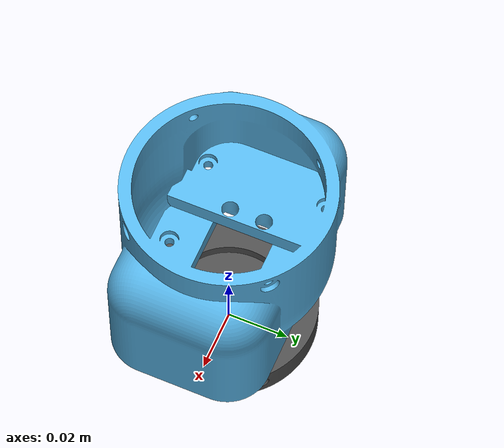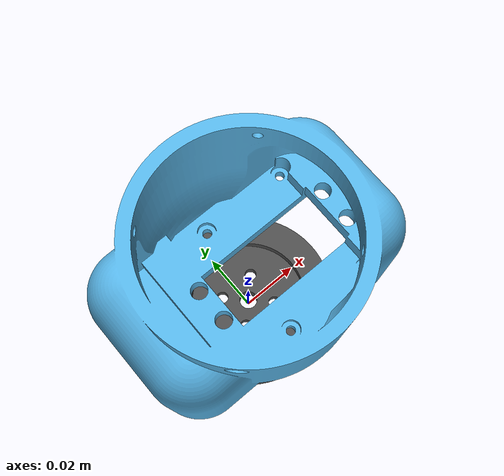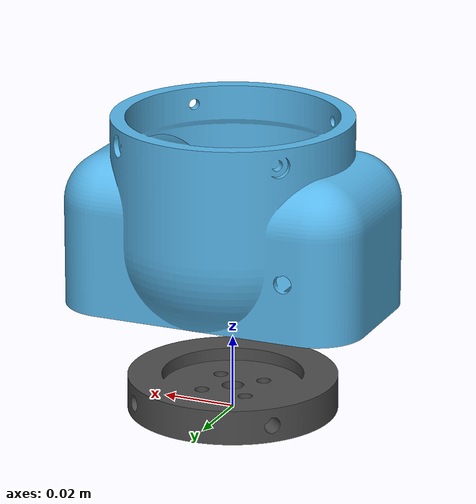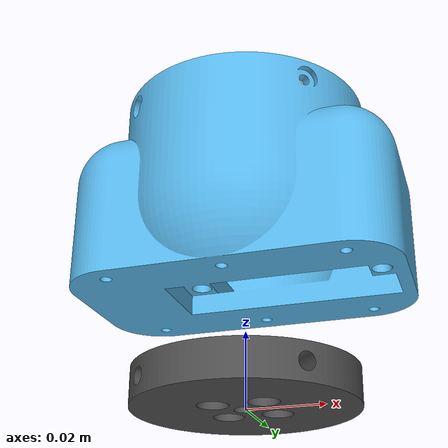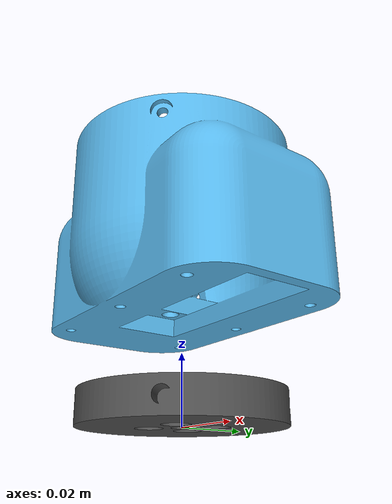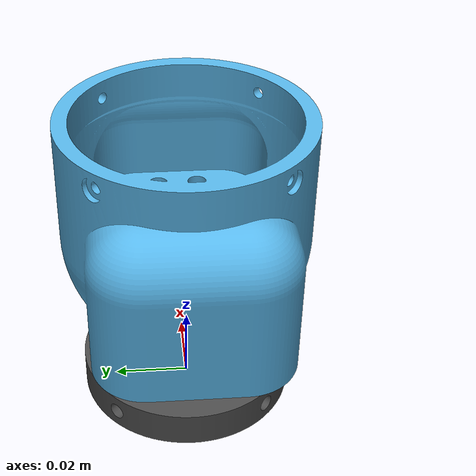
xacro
<?xml version="1.0"?>
<robot xmlns:xacro="http://www.ros.org/wiki/xacro">

  <!-- WORLD LINK & BASE FIXTURE                         -->
  <link name="world"/>

  <joint name="world_joint" type="fixed">
    <parent link="world"/>
    <child link="base_link"/>
    <origin xyz="0 0 0" rpy="0 0 0"/>
  </joint>

  <!-- BASE LINK (001 Base Plate + 002 Washer)           -->
  <link name="base_link">
    <!-- 001 Base Plate -->
    <visual>
      <origin xyz="-0.100 -0.100 0.0" rpy="0 0 0"/>
      <geometry>
        <mesh filename="package://eb15_description/meshes/001.stl" scale="0.001 0.001 0.001"/>
      </geometry>
      <material name="dark_gray"/>
    </visual>

    <!-- 002 Washer (Thickness: 0.8mm) -->
    <visual>
      <origin xyz="-0.100 -0.100 0.030" rpy="0 0 0"/>
      <geometry>
        <mesh filename="package://eb15_description/meshes/002.stl" scale="0.001 0.001 0.001"/>
      </geometry>
      <material name="metallic"/>
    </visual>

    <collision>
      <origin xyz="0 0 0.015" rpy="0 0 0"/>
      <geometry>
        <cylinder radius="0.0525" length="0.030"/>
      </geometry>
    </collision>

    <inertial>
      <origin xyz="0 0 0.015" rpy="0 0 0"/>
      <mass value="0.50"/>
      <inertia ixx="0.0008" ixy="0" ixz="0" iyy="0.0008" iyz="0" izz="0.0012"/>
    </inertial>
  </link>

</robot>
